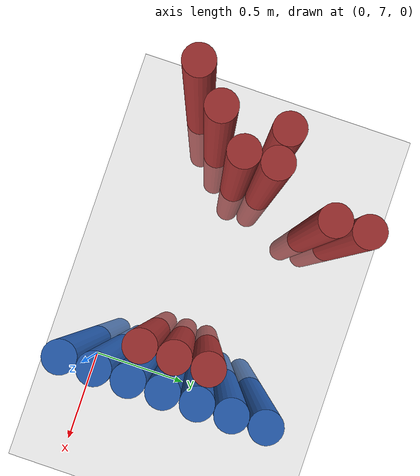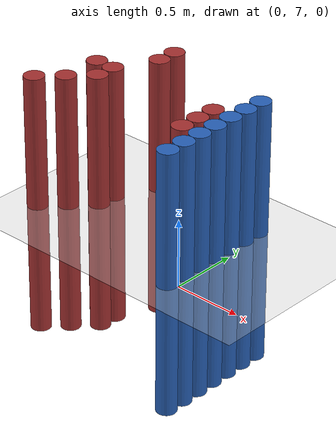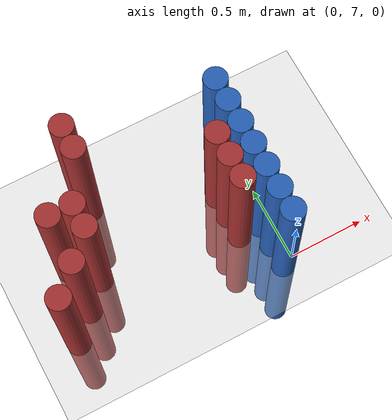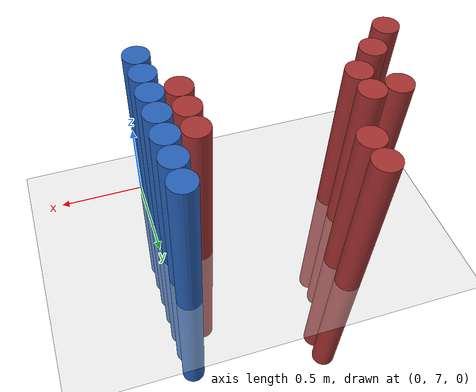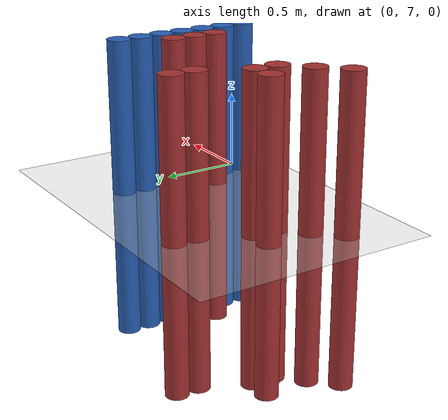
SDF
<sdf version="1.6">
 <world name="default">
  <model name="ground_plane">
   <static>1</static>
   <link name="link">
    <collision name="collision">
     <geometry><plane><normal>0 0 1</normal><size>100 100</size></plane></geometry>
     <surface><friction><ode><mu>100</mu><mu2>50</mu2></ode></friction></surface>
    </collision>
    <visual name="visual">
     <cast_shadows>0</cast_shadows>
     <geometry><plane><normal>0 0 1</normal><size>100 100</size></plane></geometry>
     <material>
      <script><uri>file://media/materials/scripts/gazebo.material</uri><name>Gazebo/Grey</name></script>
     </material>
    </visual>
   </link>
  </model>
  <model name="unit_cylinder_192">
   <static>1</static>
   <pose>-1.425000 7.125000 0.000000 0.000000 0.000000 0.000000</pose>
   <link name="link">
    <inertial>
     <mass>1</mass>
     <inertia><ixx>0.145833</ixx><ixy>0</ixy><ixz>0</ixz><iyy>0.145833</iyy><iyz>0</iyz><izz>0.125</izz></inertia>
    </inertial>
    <collision name="collision">
     <geometry><cylinder><radius>0.075000</radius><length>2</length></cylinder></geometry>
    </collision>
    <visual name="visual">
     <geometry><cylinder><radius>0.075000</radius><length>2</length></cylinder></geometry>
     <material>
      <ambient>0.648000 0.192000 0.192000 1</ambient>
      <diffuse>0.648000 0.192000 0.192000 1</diffuse>
     </material>
     <material>
      <script><name>Gazebo/Grey</name><uri>file://media/materials/scripts/gazebo.material</uri></script>
     </material>
    </visual>
   </link>
  </model>
  <model name="unit_cylinder_193">
   <static>1</static>
   <pose>-1.275000 7.275000 0.000000 0.000000 0.000000 0.000000</pose>
   <link name="link">
    <inertial>
     <mass>1</mass>
     <inertia><ixx>0.145833</ixx><ixy>0</ixy><ixz>0</ixz><iyy>0.145833</iyy><iyz>0</iyz><izz>0.125</izz></inertia>
    </inertial>
    <collision name="collision">
     <geometry><cylinder><radius>0.075000</radius><length>2</length></cylinder></geometry>
    </collision>
    <visual name="visual">
     <geometry><cylinder><radius>0.075000</radius><length>2</length></cylinder></geometry>
     <material>
      <ambient>0.648000 0.192000 0.192000 1</ambient>
      <diffuse>0.648000 0.192000 0.192000 1</diffuse>
     </material>
     <material>
      <script><name>Gazebo/Grey</name><uri>file://media/materials/scripts/gazebo.material</uri></script>
     </material>
    </visual>
   </link>
  </model>
  <model name="unit_cylinder_194">
   <static>1</static>
   <pose>-1.275000 7.575000 0.000000 0.000000 0.000000 0.000000</pose>
   <link name="link">
    <inertial>
     <mass>1</mass>
     <inertia><ixx>0.145833</ixx><ixy>0</ixy><ixz>0</ixz><iyy>0.145833</iyy><iyz>0</iyz><izz>0.125</izz></inertia>
    </inertial>
    <collision name="collision">
     <geometry><cylinder><radius>0.075000</radius><length>2</length></cylinder></geometry>
    </collision>
    <visual name="visual">
     <geometry><cylinder><radius>0.075000</radius><length>2</length></cylinder></geometry>
     <material>
      <ambient>0.648000 0.192000 0.192000 1</ambient>
      <diffuse>0.648000 0.192000 0.192000 1</diffuse>
     </material>
     <material>
      <script><name>Gazebo/Grey</name><uri>file://media/materials/scripts/gazebo.material</uri></script>
     </material>
    </visual>
   </link>
  </model>
  <model name="unit_cylinder_195">
   <static>1</static>
   <pose>-1.125000 7.425000 0.000000 0.000000 0.000000 0.000000</pose>
   <link name="link">
    <inertial>
     <mass>1</mass>
     <inertia><ixx>0.145833</ixx><ixy>0</ixy><ixz>0</ixz><iyy>0.145833</iyy><iyz>0</iyz><izz>0.125</izz></inertia>
    </inertial>
    <collision name="collision">
     <geometry><cylinder><radius>0.075000</radius><length>2</length></cylinder></geometry>
    </collision>
    <visual name="visual">
     <geometry><cylinder><radius>0.075000</radius><length>2</length></cylinder></geometry>
     <material>
      <ambient>0.648000 0.192000 0.192000 1</ambient>
      <diffuse>0.648000 0.192000 0.192000 1</diffuse>
     </material>
     <material>
      <script><name>Gazebo/Grey</name><uri>file://media/materials/scripts/gazebo.material</uri></script>
     </material>
    </visual>
   </link>
  </model>
  <model name="unit_cylinder_196">
   <static>1</static>
   <pose>-1.125000 7.575000 0.000000 0.000000 0.000000 0.000000</pose>
   <link name="link">
    <inertial>
     <mass>1</mass>
     <inertia><ixx>0.145833</ixx><ixy>0</ixy><ixz>0</ixz><iyy>0.145833</iyy><iyz>0</iyz><izz>0.125</izz></inertia>
    </inertial>
    <collision name="collision">
     <geometry><cylinder><radius>0.075000</radius><length>2</length></cylinder></geometry>
    </collision>
    <visual name="visual">
     <geometry><cylinder><radius>0.075000</radius><length>2</length></cylinder></geometry>
     <material>
      <ambient>0.648000 0.192000 0.192000 1</ambient>
      <diffuse>0.648000 0.192000 0.192000 1</diffuse>
     </material>
     <material>
      <script><name>Gazebo/Grey</name><uri>file://media/materials/scripts/gazebo.material</uri></script>
     </material>
    </visual>
   </link>
  </model>
  <model name="unit_cylinder_197">
   <static>1</static>
   <pose>-0.975000 7.875000 0.000000 0.000000 0.000000 0.000000</pose>
   <link name="link">
    <inertial>
     <mass>1</mass>
     <inertia><ixx>0.145833</ixx><ixy>0</ixy><ixz>0</ixz><iyy>0.145833</iyy><iyz>0</iyz><izz>0.125</izz></inertia>
    </inertial>
    <collision name="collision">
     <geometry><cylinder><radius>0.075000</radius><length>2</length></cylinder></geometry>
    </collision>
    <visual name="visual">
     <geometry><cylinder><radius>0.075000</radius><length>2</length></cylinder></geometry>
     <material>
      <ambient>0.648000 0.192000 0.192000 1</ambient>
      <diffuse>0.648000 0.192000 0.192000 1</diffuse>
     </material>
     <material>
      <script><name>Gazebo/Grey</name><uri>file://media/materials/scripts/gazebo.material</uri></script>
     </material>
    </visual>
   </link>
  </model>
  <model name="unit_cylinder_198">
   <static>1</static>
   <pose>-0.975000 8.025000 0.000000 0.000000 0.000000 0.000000</pose>
   <link name="link">
    <inertial>
     <mass>1</mass>
     <inertia><ixx>0.145833</ixx><ixy>0</ixy><ixz>0</ixz><iyy>0.145833</iyy><iyz>0</iyz><izz>0.125</izz></inertia>
    </inertial>
    <collision name="collision">
     <geometry><cylinder><radius>0.075000</radius><length>2</length></cylinder></geometry>
    </collision>
    <visual name="visual">
     <geometry><cylinder><radius>0.075000</radius><length>2</length></cylinder></geometry>
     <material>
      <ambient>0.648000 0.192000 0.192000 1</ambient>
      <diffuse>0.648000 0.192000 0.192000 1</diffuse>
     </material>
     <material>
      <script><name>Gazebo/Grey</name><uri>file://media/materials/scripts/gazebo.material</uri></script>
     </material>
    </visual>
   </link>
  </model>
  <model name="unit_cylinder_224">
   <static>1</static>
   <pose>-0.225000 7.275000 0.000000 0.000000 0.000000 0.000000</pose>
   <link name="link">
    <inertial>
     <mass>1</mass>
     <inertia><ixx>0.145833</ixx><ixy>0</ixy><ixz>0</ixz><iyy>0.145833</iyy><iyz>0</iyz><izz>0.125</izz></inertia>
    </inertial>
    <collision name="collision">
     <geometry><cylinder><radius>0.075000</radius><length>2</length></cylinder></geometry>
    </collision>
    <visual name="visual">
     <geometry><cylinder><radius>0.075000</radius><length>2</length></cylinder></geometry>
     <material>
      <ambient>0.648000 0.192000 0.192000 1</ambient>
      <diffuse>0.648000 0.192000 0.192000 1</diffuse>
     </material>
     <material>
      <script><name>Gazebo/Grey</name><uri>file://media/materials/scripts/gazebo.material</uri></script>
     </material>
    </visual>
   </link>
  </model>
  <model name="unit_cylinder_225">
   <static>1</static>
   <pose>-0.225000 7.425000 0.000000 0.000000 0.000000 0.000000</pose>
   <link name="link">
    <inertial>
     <mass>1</mass>
     <inertia><ixx>0.145833</ixx><ixy>0</ixy><ixz>0</ixz><iyy>0.145833</iyy><iyz>0</iyz><izz>0.125</izz></inertia>
    </inertial>
    <collision name="collision">
     <geometry><cylinder><radius>0.075000</radius><length>2</length></cylinder></geometry>
    </collision>
    <visual name="visual">
     <geometry><cylinder><radius>0.075000</radius><length>2</length></cylinder></geometry>
     <material>
      <ambient>0.648000 0.192000 0.192000 1</ambient>
      <diffuse>0.648000 0.192000 0.192000 1</diffuse>
     </material>
     <material>
      <script><name>Gazebo/Grey</name><uri>file://media/materials/scripts/gazebo.material</uri></script>
     </material>
    </visual>
   </link>
  </model>
  <model name="unit_cylinder_226">
   <static>1</static>
   <pose>-0.225000 7.575000 0.000000 0.000000 0.000000 0.000000</pose>
   <link name="link">
    <inertial>
     <mass>1</mass>
     <inertia><ixx>0.145833</ixx><ixy>0</ixy><ixz>0</ixz><iyy>0.145833</iyy><iyz>0</iyz><izz>0.125</izz></inertia>
    </inertial>
    <collision name="collision">
     <geometry><cylinder><radius>0.075000</radius><length>2</length></cylinder></geometry>
    </collision>
    <visual name="visual">
     <geometry><cylinder><radius>0.075000</radius><length>2</length></cylinder></geometry>
     <material>
      <ambient>0.648000 0.192000 0.192000 1</ambient>
      <diffuse>0.648000 0.192000 0.192000 1</diffuse>
     </material>
     <material>
      <script><name>Gazebo/Grey</name><uri>file://media/materials/scripts/gazebo.material</uri></script>
     </material>
    </visual>
   </link>
  </model>
  <model name="unit_cylinder_243">
   <static>1</static>
   <pose>-0.075000 6.975000 0.000000 0.000000 0.000000 0.000000</pose>
   <link name="link">
    <inertial>
     <mass>1</mass>
     <inertia><ixx>0.145833</ixx><ixy>0</ixy><ixz>0</ixz><iyy>0.145833</iyy><iyz>0</iyz><izz>0.125</izz></inertia>
    </inertial>
    <collision name="collision">
     <geometry><cylinder><radius>0.075000</radius><length>2</length></cylinder></geometry>
    </collision>
    <visual name="visual">
     <geometry><cylinder><radius>0.075000</radius><length>2</length></cylinder></geometry>
     <material>
      <ambient>0.152000 0.379000 0.720000 1</ambient>
      <diffuse>0.152000 0.379000 0.720000 1</diffuse>
     </material>
     <material>
      <script><name>Gazebo/Grey</name><uri>file://media/materials/scripts/gazebo.material</uri></script>
     </material>
    </visual>
   </link>
  </model>
  <model name="unit_cylinder_244">
   <static>1</static>
   <pose>-0.075000 7.125000 0.000000 0.000000 0.000000 0.000000</pose>
   <link name="link">
    <inertial>
     <mass>1</mass>
     <inertia><ixx>0.145833</ixx><ixy>0</ixy><ixz>0</ixz><iyy>0.145833</iyy><iyz>0</iyz><izz>0.125</izz></inertia>
    </inertial>
    <collision name="collision">
     <geometry><cylinder><radius>0.075000</radius><length>2</length></cylinder></geometry>
    </collision>
    <visual name="visual">
     <geometry><cylinder><radius>0.075000</radius><length>2</length></cylinder></geometry>
     <material>
      <ambient>0.152000 0.379000 0.720000 1</ambient>
      <diffuse>0.152000 0.379000 0.720000 1</diffuse>
     </material>
     <material>
      <script><name>Gazebo/Grey</name><uri>file://media/materials/scripts/gazebo.material</uri></script>
     </material>
    </visual>
   </link>
  </model>
  <model name="unit_cylinder_245">
   <static>1</static>
   <pose>-0.075000 7.275000 0.000000 0.000000 0.000000 0.000000</pose>
   <link name="link">
    <inertial>
     <mass>1</mass>
     <inertia><ixx>0.145833</ixx><ixy>0</ixy><ixz>0</ixz><iyy>0.145833</iyy><iyz>0</iyz><izz>0.125</izz></inertia>
    </inertial>
    <collision name="collision">
     <geometry><cylinder><radius>0.075000</radius><length>2</length></cylinder></geometry>
    </collision>
    <visual name="visual">
     <geometry><cylinder><radius>0.075000</radius><length>2</length></cylinder></geometry>
     <material>
      <ambient>0.152000 0.379000 0.720000 1</ambient>
      <diffuse>0.152000 0.379000 0.720000 1</diffuse>
     </material>
     <material>
      <script><name>Gazebo/Grey</name><uri>file://media/materials/scripts/gazebo.material</uri></script>
     </material>
    </visual>
   </link>
  </model>
  <model name="unit_cylinder_246">
   <static>1</static>
   <pose>-0.075000 7.425000 0.000000 0.000000 0.000000 0.000000</pose>
   <link name="link">
    <inertial>
     <mass>1</mass>
     <inertia><ixx>0.145833</ixx><ixy>0</ixy><ixz>0</ixz><iyy>0.145833</iyy><iyz>0</iyz><izz>0.125</izz></inertia>
    </inertial>
    <collision name="collision">
     <geometry><cylinder><radius>0.075000</radius><length>2</length></cylinder></geometry>
    </collision>
    <visual name="visual">
     <geometry><cylinder><radius>0.075000</radius><length>2</length></cylinder></geometry>
     <material>
      <ambient>0.152000 0.379000 0.720000 1</ambient>
      <diffuse>0.152000 0.379000 0.720000 1</diffuse>
     </material>
     <material>
      <script><name>Gazebo/Grey</name><uri>file://media/materials/scripts/gazebo.material</uri></script>
     </material>
    </visual>
   </link>
  </model>
  <model name="unit_cylinder_247">
   <static>1</static>
   <pose>-0.075000 7.575000 0.000000 0.000000 0.000000 0.000000</pose>
   <link name="link">
    <inertial>
     <mass>1</mass>
     <inertia><ixx>0.145833</ixx><ixy>0</ixy><ixz>0</ixz><iyy>0.145833</iyy><iyz>0</iyz><izz>0.125</izz></inertia>
    </inertial>
    <collision name="collision">
     <geometry><cylinder><radius>0.075000</radius><length>2</length></cylinder></geometry>
    </collision>
    <visual name="visual">
     <geometry><cylinder><radius>0.075000</radius><length>2</length></cylinder></geometry>
     <material>
      <ambient>0.152000 0.379000 0.720000 1</ambient>
      <diffuse>0.152000 0.379000 0.720000 1</diffuse>
     </material>
     <material>
      <script><name>Gazebo/Grey</name><uri>file://media/materials/scripts/gazebo.material</uri></script>
     </material>
    </visual>
   </link>
  </model>
  <model name="unit_cylinder_248">
   <static>1</static>
   <pose>-0.075000 7.725000 0.000000 0.000000 0.000000 0.000000</pose>
   <link name="link">
    <inertial>
     <mass>1</mass>
     <inertia><ixx>0.145833</ixx><ixy>0</ixy><ixz>0</ixz><iyy>0.145833</iyy><iyz>0</iyz><izz>0.125</izz></inertia>
    </inertial>
    <collision name="collision">
     <geometry><cylinder><radius>0.075000</radius><length>2</length></cylinder></geometry>
    </collision>
    <visual name="visual">
     <geometry><cylinder><radius>0.075000</radius><length>2</length></cylinder></geometry>
     <material>
      <ambient>0.152000 0.379000 0.720000 1</ambient>
      <diffuse>0.152000 0.379000 0.720000 1</diffuse>
     </material>
     <material>
      <script><name>Gazebo/Grey</name><uri>file://media/materials/scripts/gazebo.material</uri></script>
     </material>
    </visual>
   </link>
  </model>
  <model name="unit_cylinder_249">
   <static>1</static>
   <pose>-0.075000 7.875000 0.000000 0.000000 0.000000 0.000000</pose>
   <link name="link">
    <inertial>
     <mass>1</mass>
     <inertia><ixx>0.145833</ixx><ixy>0</ixy><ixz>0</ixz><iyy>0.145833</iyy><iyz>0</iyz><izz>0.125</izz></inertia>
    </inertial>
    <collision name="collision">
     <geometry><cylinder><radius>0.075000</radius><length>2</length></cylinder></geometry>
    </collision>
    <visual name="visual">
     <geometry><cylinder><radius>0.075000</radius><length>2</length></cylinder></geometry>
     <material>
      <ambient>0.152000 0.379000 0.720000 1</ambient>
      <diffuse>0.152000 0.379000 0.720000 1</diffuse>
     </material>
     <material>
      <script><name>Gazebo/Grey</name><uri>file://media/materials/scripts/gazebo.material</uri></script>
     </material>
    </visual>
   </link>
  </model>
 </world>
</sdf>
